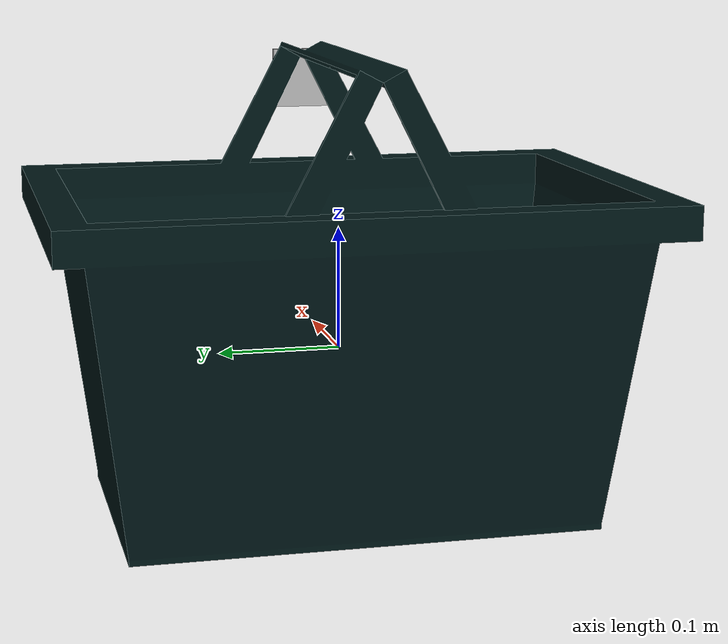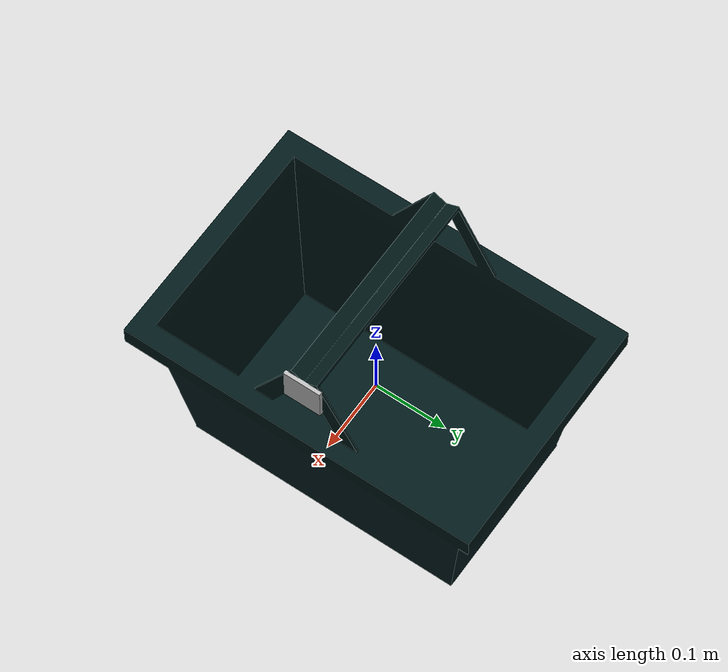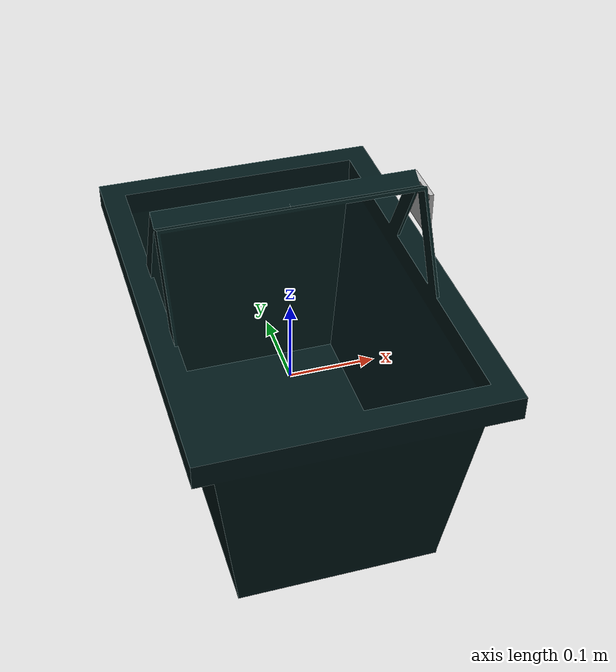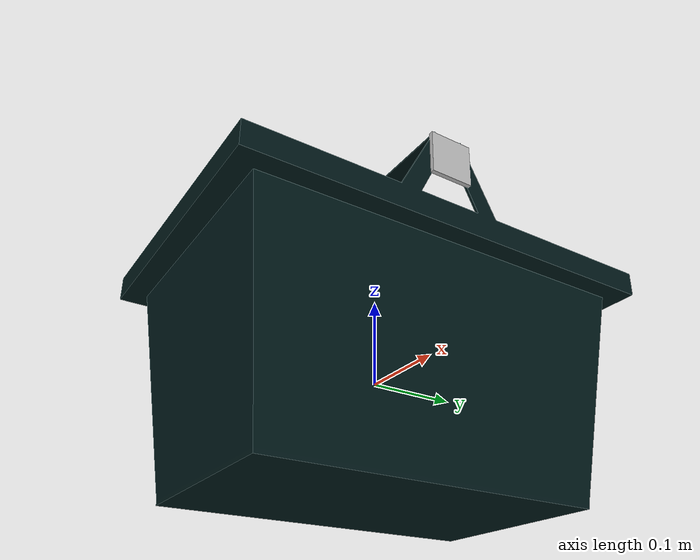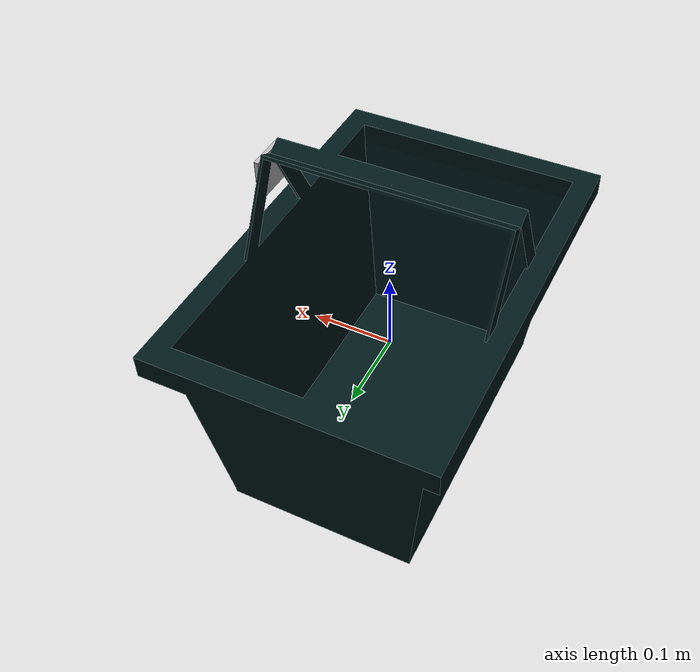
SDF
<?xml version="1.0" ?>
<sdf version="1.4">
  <model name="basket_aruco_444">
    <static>0</static>
    <link name="link">

      <inertial>
        <mass>0.05</mass>
        <inertia>
          <ixx>0.000052083</ixx>
          <ixy>0.0</ixy>
          <ixz>0.0</ixz>
          <iyy>0.000052083</iyy>
          <iyz>0.0</iyz>
          <izz>0.000020833</izz>
        </inertia>
      </inertial>

      <collision name="colision">
        <pose>0 0 0 0 0 0</pose>
          <geometry>
          <mesh>
            <uri>model://basket_with_aruco/meshes/basket_with_aruco.dae</uri>
	    <scale> 1 1 1 </scale>
          </mesh>
        </geometry>
        <surface>
          <friction>
            <ode>
              <mu>30.0</mu>
              <mu2>30.0</mu2>
              <fdir1>0 0 0</fdir1>
            </ode>
          </friction>
          <contact>
            <ode>
              <kp>1000000.0</kp>
              <kd>100.0</kd>
              <min_depth>0.0025</min_depth>
              <max_vel>1.0</max_vel>
            </ode>
          </contact>
        </surface>
      </collision>

      <visual name="visual1">
        <pose>0 0 0 0 0 0</pose>
        <geometry>
          <mesh>
            <uri>model://basket_with_aruco/meshes/basket_with_aruco.dae</uri>
	    <scale> 1 1 1 </scale>
          </mesh>
        </geometry>
      </visual>

      <velocity_decay>
        <linear>0.000000</linear>
        <angular>0.000000</angular>
      </velocity_decay>
      <self_collide>0</self_collide>
      <kinematic>0</kinematic>
      <gravity>1</gravity>
    </link>
  </model>
</sdf>
